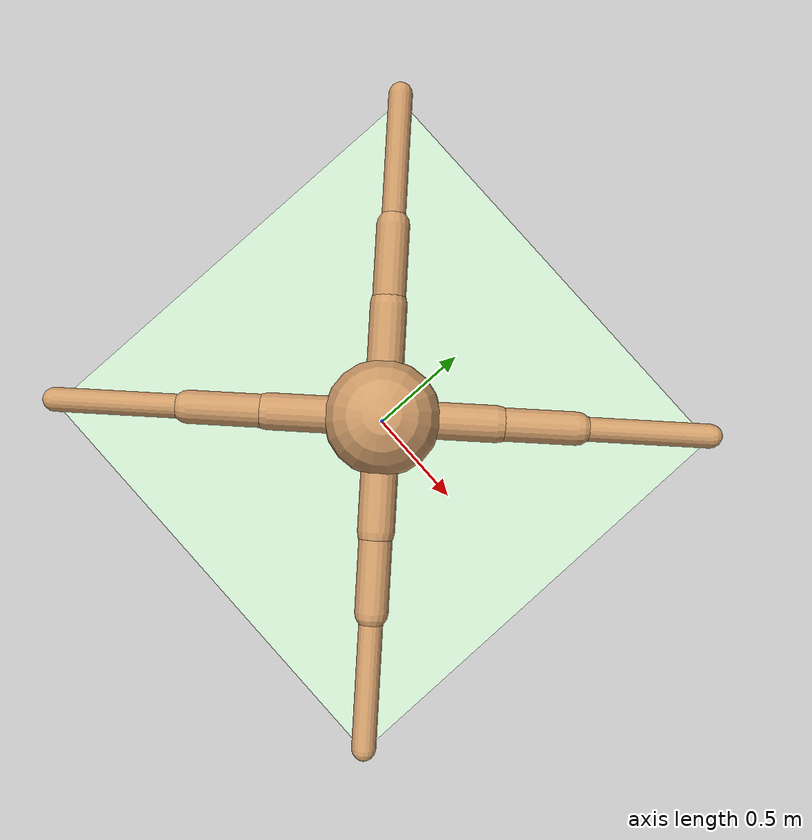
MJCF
<mujoco model="ant_3joint">
  <compiler angle="degree" coordinate="local" inertiafromgeom="true"/>
  <option integrator="RK4" timestep="0.01"/>
  <custom>
    <numeric data="0.0 0.0 0.4429 1.0 0.0 0.0 0.0 0.0 -0.5411 2.1118 0.0 -0.5411 -2.1118 0.0 -0.5411 -2.1118 0.0 -0.5411 2.1118" name="init_qpos"/>
  </custom>
  <default>
    <joint armature="1" damping="1" limited="true"/>
    <geom conaffinity="0" condim="3" density="5.0" friction="1 0.5 0.5" margin="0.01" rgba="0.8 0.6 0.4 1"/>
  </default>
  <asset>
    <texture builtin="gradient" height="100" rgb1="1 1 1" rgb2="0 0 0" type="skybox" width="100"/>
    <texture builtin="flat" height="1278" mark="cross" markrgb="1 1 1" name="texgeom" random="0.01" rgb1="0.8 0.6 0.4" rgb2="0.8 0.6 0.4" type="cube" width="127"/>
    <texture builtin="checker" height="100" name="texplane" rgb1="0 0 0" rgb2="0.8 0.8 0.8" type="2d" width="100"/>
    <material name="MatPlane" reflectance="0.5" shininess="1" specular="1" texrepeat="60 60" texture="texplane"/>
    <material name="geom" texture="texgeom" texuniform="true"/>
  </asset>
  <worldbody>
    <light cutoff="100" diffuse="1 1 1" dir="-0 0 -1.3" directional="true" exponent="1" pos="0 0 1.3" specular=".1 .1 .1"/>
    <geom conaffinity="1" condim="3" material="MatPlane" name="floor" pos="0 0 0" rgba="0.8 0.9 0.8 1" size="40 40 40" type="plane"/>
    <body name="torso" pos="0 0 0.75">
      <camera name="track" mode="trackcom" pos="0 -3 0.3" xyaxes="1 0 0 0 0 1"/>
      <geom name="torso_geom" pos="0 0 0" size="0.25" type="sphere"/>
      <joint armature="0" damping="0" limited="false" margin="0.01" name="root" pos="0 0 0" type="free"/>
      <body name="front_left_leg" pos="0 0 0">
        <geom fromto="0.0 0.0 0.0 0.16 0.16 0.0" name="aux_1_geom" size="0.08" type="capsule"/>
        <body name="aux_1" pos="0.16 0.16 0">
          <joint axis="0 0 1" name="hip_1" pos="0.0 0.0 0.0" range="-30 30" type="hinge"/>
          <geom fromto="0.0 0.0 0.0 0.18 0.18 0.0" name="left_leg_geom" size="0.08" type="capsule"/>
          <body name="front_left_shank" pos="0.18 0.18 0">
            <joint axis="-1 1 0" name="ankle_1" pos="0.0 0.0 0.0" range="-91 -16" type="hinge"/>
            <geom fromto="0.0 0.0 0.0 0.24 0.24 0.0" name="left_ankle_geom" size="0.072" type="capsule"/>
            <body name="front_left_foot" pos="0.24 0.24 0">
              <joint axis="-1 1 0" name="foot_1" pos="0.0 0.0 0.0" range="91 151" type="hinge"/>
              <geom fromto="0.0 0.0 0.0 0.40 0.40 0.0" name="left_foot_geom" size="0.052" type="capsule"/>
            </body>
          </body>
        </body>
      </body>
      <body name="front_right_leg" pos="0 0 0">
        <geom fromto="0.0 0.0 0.0 -0.16 0.16 0.0" name="aux_2_geom" size="0.08" type="capsule"/>
        <body name="aux_2" pos="-0.16 0.16 0">
          <joint axis="0 0 1" name="hip_2" pos="0.0 0.0 0.0" range="-30 30" type="hinge"/>
          <geom fromto="0.0 0.0 0.0 -0.18 0.18 0.0" name="right_leg_geom" size="0.08" type="capsule"/>
          <body name="front_right_shank" pos="-0.18 0.18 0">
            <joint axis="-1 -1 0" name="ankle_2" pos="0.0 0.0 0.0" range="-91 -16" type="hinge"/>
            <geom fromto="0.0 0.0 0.0 -0.24 0.24 0.0" name="right_ankle_geom" size="0.072" type="capsule"/>
            <body name="front_right_foot" pos="-0.24 0.24 0">
              <joint axis="1 1 0" name="foot_2" pos="0.0 0.0 0.0" range="-151 -91" type="hinge"/>
              <geom fromto="0.0 0.0 0.0 -0.40 0.40 0.0" name="right_foot_geom" size="0.052" type="capsule"/>
            </body>
          </body>
        </body>
      </body>
      <body name="back_leg" pos="0 0 0">
        <geom fromto="0.0 0.0 0.0 -0.16 -0.16 0.0" name="aux_3_geom" size="0.08" type="capsule"/>
        <body name="aux_3" pos="-0.16 -0.16 0">
          <joint axis="0 0 1" name="hip_3" pos="0.0 0.0 0.0" range="-30 30" type="hinge"/>
          <geom fromto="0.0 0.0 0.0 -0.18 -0.18 0.0" name="back_leg_geom" size="0.08" type="capsule"/>
          <body name="left_back_shank" pos="-0.18 -0.18 0">
            <joint axis="1 -1 0" name="ankle_3" pos="0.0 0.0 0.0" range="-91 -16" type="hinge"/>
            <geom fromto="0.0 0.0 0.0 -0.24 -0.24 0.0" name="third_ankle_geom" size="0.072" type="capsule"/>
            <body name="left_back_foot" pos="-0.24 -0.24 0">
              <joint axis="-1 1 0" name="foot_3" pos="0.0 0.0 0.0" range="-151 -91" type="hinge"/>
              <geom fromto="0.0 0.0 0.0 -0.40 -0.40 0.0" name="third_foot_geom" size="0.052" type="capsule"/>
            </body>
          </body>
        </body>
      </body>
      <body name="right_back_leg" pos="0 0 0">
        <geom fromto="0.0 0.0 0.0 0.16 -0.16 0.0" name="aux_4_geom" size="0.08" type="capsule"/>
        <body name="aux_4" pos="0.16 -0.16 0">
          <joint axis="0 0 1" name="hip_4" pos="0.0 0.0 0.0" range="-30 30" type="hinge"/>
          <geom fromto="0.0 0.0 0.0 0.18 -0.18 0.0" name="rightback_leg_geom" size="0.08" type="capsule"/>
          <body name="right_back_shank" pos="0.18 -0.18 0">
            <joint axis="1 1 0" name="ankle_4" pos="0.0 0.0 0.0" range="-91 -16" type="hinge"/>
            <geom fromto="0.0 0.0 0.0 0.24 -0.24 0.0" name="fourth_ankle_geom" size="0.072" type="capsule"/>
            <body name="right_back_foot" pos="0.24 -0.24 0">
              <joint axis="1 1 0" name="foot_4" pos="0.0 0.0 0.0" range="91 151" type="hinge"/>
              <geom fromto="0.0 0.0 0.0 0.40 -0.40 0.0" name="fourth_foot_geom" size="0.052" type="capsule"/>
            </body>
          </body>
        </body>
      </body>
    </body>
  </worldbody>
  <actuator>
    <motor ctrllimited="true" ctrlrange="-1.0 1.0" gear="150" joint="hip_4"/>
    <motor ctrllimited="true" ctrlrange="-1.0 1.0" gear="150" joint="ankle_4"/>
    <motor ctrllimited="true" ctrlrange="-1.0 1.0" gear="100" joint="foot_4"/>
    <motor ctrllimited="true" ctrlrange="-1.0 1.0" gear="150" joint="hip_1"/>
    <motor ctrllimited="true" ctrlrange="-1.0 1.0" gear="150" joint="ankle_1"/>
    <motor ctrllimited="true" ctrlrange="-1.0 1.0" gear="100" joint="foot_1"/>
    <motor ctrllimited="true" ctrlrange="-1.0 1.0" gear="150" joint="hip_2"/>
    <motor ctrllimited="true" ctrlrange="-1.0 1.0" gear="150" joint="ankle_2"/>
    <motor ctrllimited="true" ctrlrange="-1.0 1.0" gear="100" joint="foot_2"/>
    <motor ctrllimited="true" ctrlrange="-1.0 1.0" gear="150" joint="hip_3"/>
    <motor ctrllimited="true" ctrlrange="-1.0 1.0" gear="150" joint="ankle_3"/>
    <motor ctrllimited="true" ctrlrange="-1.0 1.0" gear="100" joint="foot_3"/>
  </actuator>
</mujoco>
